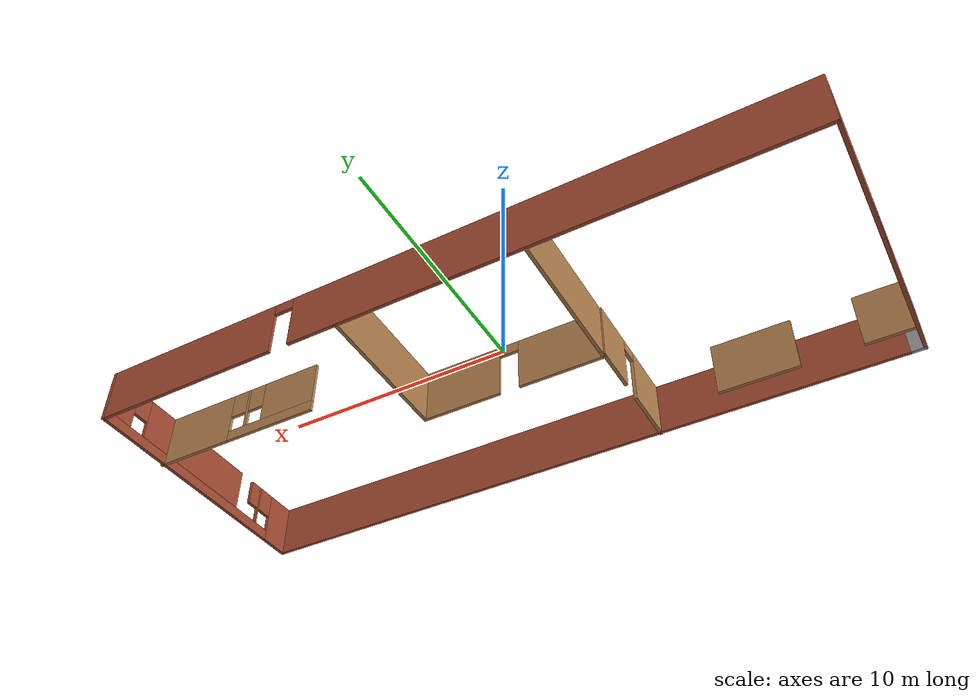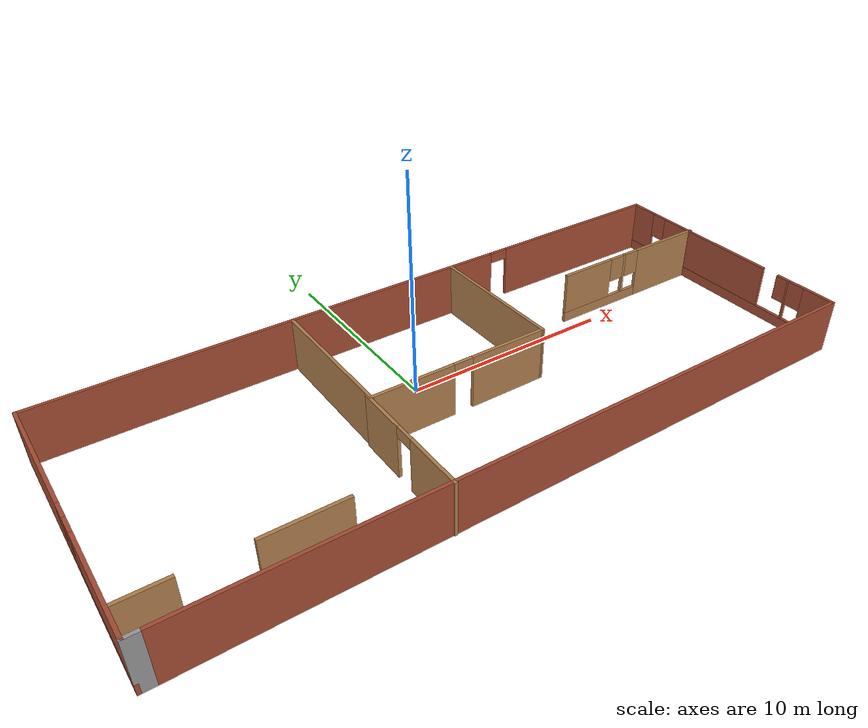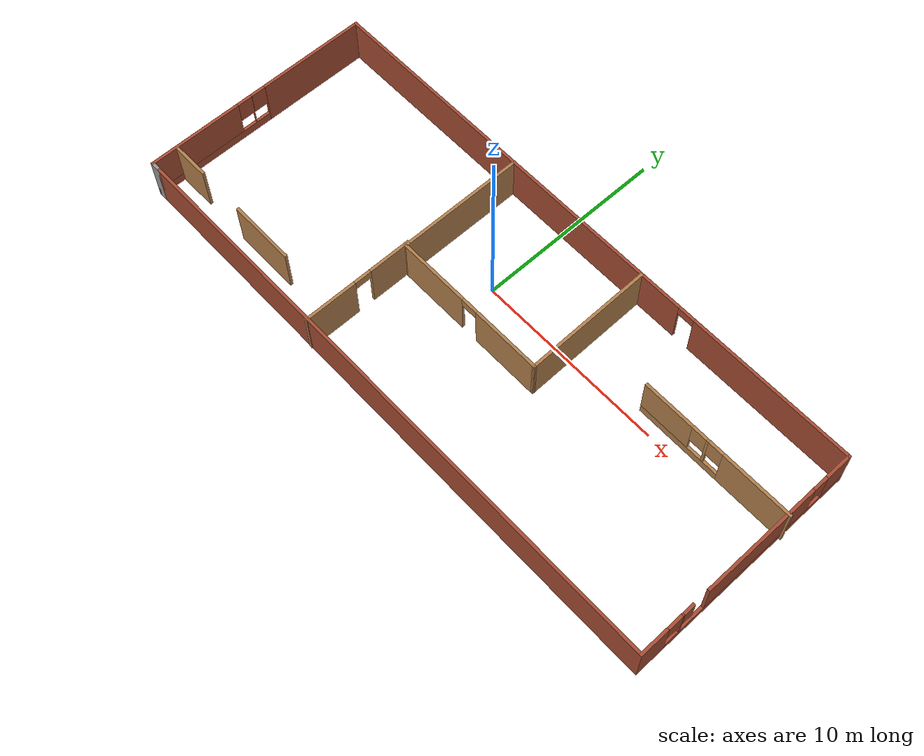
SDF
<?xml version='1.0'?>
<sdf version='1.6'>
  <model name='apartment'>
    <pose frame=''>1.18499 -1.72683 0 0 -0 0</pose>
    <link name='Wall_18'>
      <collision name='Wall_18_Collision'>
        <geometry>
          <box>
            <size>31.25 0.15 2.5</size>
          </box>
        </geometry>
        <pose frame=''>0 0 1.25 0 -0 0</pose>
      </collision>
      <visual name='Wall_18_Visual'>
        <pose frame=''>0 0 1.25 0 -0 0</pose>
        <geometry>
          <box>
            <size>31.25 0.15 2.5</size>
          </box>
        </geometry>
        <material>
          <script>
            <uri>file://media/materials/scripts/gazebo.material</uri>
            <name>Gazebo/Bricks</name>
          </script>
          <ambient>1 1 1 1</ambient>
        </material>
        <meta>
          <layer>0</layer>
        </meta>
      </visual>
      <pose frame=''>0.204376 -6.15477 0 0 -0 0</pose>
    </link>
    <link name='Wall_19'>
      <pose frame=''>15.7544 0.020228 0 0 -0 1.5708</pose>
      <visual name='Wall_19_Visual_0'>
        <pose frame=''>-5.46179 0 1.25 0 -0 0</pose>
        <geometry>
          <box>
            <size>1.57641 0.15 2.5</size>
          </box>
        </geometry>
        <material>
          <script>
            <uri>file://media/materials/scripts/gazebo.material</uri>
            <name>Gazebo/Bricks</name>
          </script>
          <ambient>1 1 1 1</ambient>
        </material>
        <meta>
          <layer>0</layer>
        </meta>
      </visual>
      <collision name='Wall_19_Collision_0'>
        <geometry>
          <box>
            <size>1.57641 0.15 2.5</size>
          </box>
        </geometry>
        <pose frame=''>-5.46179 0 1.25 0 -0 0</pose>
      </collision>
      <visual name='Wall_19_Visual_1'>
        <pose frame=''>0.788206 0 0.25 0 -0 0</pose>
        <geometry>
          <box>
            <size>10.9236 0.15 0.5</size>
          </box>
        </geometry>
        <material>
          <script>
            <uri>file://media/materials/scripts/gazebo.material</uri>
            <name>Gazebo/Bricks</name>
          </script>
          <ambient>1 1 1 1</ambient>
        </material>
        <meta>
          <layer>0</layer>
        </meta>
      </visual>
      <collision name='Wall_19_Collision_1'>
        <geometry>
          <box>
            <size>10.9236 0.15 0.5</size>
          </box>
        </geometry>
        <pose frame=''>0.788206 0 0.25 0 -0 0</pose>
      </collision>
      <visual name='Wall_19_Visual_2'>
        <pose frame=''>-3.82858 0 1.5 0 -0 0</pose>
        <geometry>
          <box>
            <size>0.090023 0.15 2</size>
          </box>
        </geometry>
        <material>
          <script>
            <uri>file://media/materials/scripts/gazebo.material</uri>
            <name>Gazebo/Bricks</name>
          </script>
          <ambient>1 1 1 1</ambient>
        </material>
        <meta>
          <layer>0</layer>
        </meta>
      </visual>
      <collision name='Wall_19_Collision_2'>
        <geometry>
          <box>
            <size>0.090023 0.15 2</size>
          </box>
        </geometry>
        <pose frame=''>-3.82858 0 1.5 0 -0 0</pose>
      </collision>
      <visual name='Wall_19_Visual_3'>
        <pose frame=''>0.803587 0 1.5 0 -0 0</pose>
        <geometry>
          <box>
            <size>6.36064 0.15 2</size>
          </box>
        </geometry>
        <material>
          <script>
            <uri>file://media/materials/scripts/gazebo.material</uri>
            <name>Gazebo/Bricks</name>
          </script>
          <ambient>1 1 1 1</ambient>
        </material>
        <meta>
          <layer>0</layer>
        </meta>
      </visual>
      <collision name='Wall_19_Collision_3'>
        <geometry>
          <box>
            <size>6.36064 0.15 2</size>
          </box>
        </geometry>
        <pose frame=''>0.803587 0 1.5 0 -0 0</pose>
      </collision>
      <visual name='Wall_19_Visual_4'>
        <pose frame=''>5.51695 0 1.5 0 -0 0</pose>
        <geometry>
          <box>
            <size>1.46609 0.15 2</size>
          </box>
        </geometry>
        <material>
          <script>
            <uri>file://media/materials/scripts/gazebo.material</uri>
            <name>Gazebo/Bricks</name>
          </script>
          <ambient>1 1 1 1</ambient>
        </material>
        <meta>
          <layer>0</layer>
        </meta>
      </visual>
      <collision name='Wall_19_Collision_4'>
        <geometry>
          <box>
            <size>1.46609 0.15 2</size>
          </box>
        </geometry>
        <pose frame=''>5.51695 0 1.5 0 -0 0</pose>
      </collision>
      <visual name='Wall_19_Visual_5'>
        <pose frame=''>-4.27359 0 1.9 0 -0 0</pose>
        <geometry>
          <box>
            <size>0.8 0.15 1.2</size>
          </box>
        </geometry>
        <material>
          <script>
            <uri>file://media/materials/scripts/gazebo.material</uri>
            <name>Gazebo/Bricks</name>
          </script>
          <ambient>1 1 1 1</ambient>
        </material>
        <meta>
          <layer>0</layer>
        </meta>
      </visual>
      <collision name='Wall_19_Collision_5'>
        <geometry>
          <box>
            <size>0.8 0.15 1.2</size>
          </box>
        </geometry>
        <pose frame=''>-4.27359 0 1.9 0 -0 0</pose>
      </collision>
      <visual name='Wall_19_Visual_6'>
        <pose frame=''>-3.48015 0 1.9 0 -0 0</pose>
        <geometry>
          <box>
            <size>0.606833 0.15 1.2</size>
          </box>
        </geometry>
        <material>
          <script>
            <uri>file://media/materials/scripts/gazebo.material</uri>
            <name>Gazebo/Bricks</name>
          </script>
          <ambient>1 1 1 1</ambient>
        </material>
        <meta>
          <layer>0</layer>
        </meta>
      </visual>
      <collision name='Wall_19_Collision_6'>
        <geometry>
          <box>
            <size>0.606833 0.15 1.2</size>
          </box>
        </geometry>
        <pose frame=''>-3.48015 0 1.9 0 -0 0</pose>
      </collision>
      <visual name='Wall_19_Visual_7'>
        <pose frame=''>4.38391 0 1.9 0 -0 0</pose>
        <geometry>
          <box>
            <size>0.8 0.15 1.2</size>
          </box>
        </geometry>
        <material>
          <script>
            <uri>file://media/materials/scripts/gazebo.material</uri>
            <name>Gazebo/Bricks</name>
          </script>
          <ambient>1 1 1 1</ambient>
        </material>
        <meta>
          <layer>0</layer>
        </meta>
      </visual>
      <collision name='Wall_19_Collision_7'>
        <geometry>
          <box>
            <size>0.8 0.15 1.2</size>
          </box>
        </geometry>
        <pose frame=''>4.38391 0 1.9 0 -0 0</pose>
      </collision>
    </link>
    <link name='Wall_20'>
      <pose frame=''>-0.045624 6.19523 0 0 -0 3.14159</pose>
      <visual name='Wall_20_Visual_0'>
        <pose frame=''>-11.4355 0 1.25 0 -0 0</pose>
        <geometry>
          <box>
            <size>8.87899 0.15 2.5</size>
          </box>
        </geometry>
        <material>
          <script>
            <uri>file://media/materials/scripts/gazebo.material</uri>
            <name>Gazebo/Bricks</name>
          </script>
          <ambient>1 1 1 1</ambient>
        </material>
        <meta>
          <layer>0</layer>
        </meta>
      </visual>
      <collision name='Wall_20_Collision_0'>
        <geometry>
          <box>
            <size>8.87899 0.15 2.5</size>
          </box>
        </geometry>
        <pose frame=''>-11.4355 0 1.25 0 -0 0</pose>
      </collision>
      <visual name='Wall_20_Visual_1'>
        <pose frame=''>4.88949 0 1.25 0 -0 0</pose>
        <geometry>
          <box>
            <size>21.971 0.15 2.5</size>
          </box>
        </geometry>
        <material>
          <script>
            <uri>file://media/materials/scripts/gazebo.material</uri>
            <name>Gazebo/Bricks</name>
          </script>
          <ambient>1 1 1 1</ambient>
        </material>
        <meta>
          <layer>0</layer>
        </meta>
      </visual>
      <collision name='Wall_20_Collision_1'>
        <geometry>
          <box>
            <size>21.971 0.15 2.5</size>
          </box>
        </geometry>
        <pose frame=''>4.88949 0 1.25 0 -0 0</pose>
      </collision>
      <visual name='Wall_20_Visual_2'>
        <pose frame=''>-6.54601 0 2.25 0 -0 0</pose>
        <geometry>
          <box>
            <size>0.9 0.15 0.5</size>
          </box>
        </geometry>
        <material>
          <script>
            <uri>file://media/materials/scripts/gazebo.material</uri>
            <name>Gazebo/Bricks</name>
          </script>
          <ambient>1 1 1 1</ambient>
        </material>
        <meta>
          <layer>0</layer>
        </meta>
      </visual>
      <collision name='Wall_20_Collision_2'>
        <geometry>
          <box>
            <size>0.9 0.15 0.5</size>
          </box>
        </geometry>
        <pose frame=''>-6.54601 0 2.25 0 -0 0</pose>
      </collision>
    </link>
    <link name='Wall_21'>
      <pose frame=''>-15.8456 0.020228 0 0 0 -1.5708</pose>
      <visual name='Wall_21_Visual_0'>
        <pose frame=''>-3.33235 0 1.25 0 -0 0</pose>
        <geometry>
          <box>
            <size>5.8353 0.15 2.5</size>
          </box>
        </geometry>
        <material>
          <script>
            <uri>file://media/materials/scripts/gazebo.material</uri>
            <name>Gazebo/Bricks</name>
          </script>
          <ambient>1 1 1 1</ambient>
        </material>
        <meta>
          <layer>0</layer>
        </meta>
      </visual>
      <collision name='Wall_21_Collision_0'>
        <geometry>
          <box>
            <size>5.8353 0.15 2.5</size>
          </box>
        </geometry>
        <pose frame=''>-3.33235 0 1.25 0 -0 0</pose>
      </collision>
      <visual name='Wall_21_Visual_1'>
        <pose frame=''>2.91765 0 0.25 0 -0 0</pose>
        <geometry>
          <box>
            <size>6.6647 0.15 0.5</size>
          </box>
        </geometry>
        <material>
          <script>
            <uri>file://media/materials/scripts/gazebo.material</uri>
            <name>Gazebo/Bricks</name>
          </script>
          <ambient>1 1 1 1</ambient>
        </material>
        <meta>
          <layer>0</layer>
        </meta>
      </visual>
      <collision name='Wall_21_Collision_1'>
        <geometry>
          <box>
            <size>6.6647 0.15 0.5</size>
          </box>
        </geometry>
        <pose frame=''>2.91765 0 0.25 0 -0 0</pose>
      </collision>
      <visual name='Wall_21_Visual_2'>
        <pose frame=''>0.389852 0 1.5 0 -0 0</pose>
        <geometry>
          <box>
            <size>0.009111 0.15 2</size>
          </box>
        </geometry>
        <material>
          <script>
            <uri>file://media/materials/scripts/gazebo.material</uri>
            <name>Gazebo/Bricks</name>
          </script>
          <ambient>1 1 1 1</ambient>
        </material>
        <meta>
          <layer>0</layer>
        </meta>
      </visual>
      <collision name='Wall_21_Collision_2'>
        <geometry>
          <box>
            <size>0.009111 0.15 2</size>
          </box>
        </geometry>
        <pose frame=''>0.389852 0 1.5 0 -0 0</pose>
      </collision>
      <visual name='Wall_21_Visual_3'>
        <pose frame=''>3.7222 0 1.5 0 -0 0</pose>
        <geometry>
          <box>
            <size>5.05559 0.15 2</size>
          </box>
        </geometry>
        <material>
          <script>
            <uri>file://media/materials/scripts/gazebo.material</uri>
            <name>Gazebo/Bricks</name>
          </script>
          <ambient>1 1 1 1</ambient>
        </material>
        <meta>
          <layer>0</layer>
        </meta>
      </visual>
      <collision name='Wall_21_Collision_3'>
        <geometry>
          <box>
            <size>5.05559 0.15 2</size>
          </box>
        </geometry>
        <pose frame=''>3.7222 0 1.5 0 -0 0</pose>
      </collision>
      <visual name='Wall_21_Visual_4'>
        <pose frame=''>-0.014703 0 1.9 0 -0 0</pose>
        <geometry>
          <box>
            <size>0.8 0.15 1.2</size>
          </box>
        </geometry>
        <material>
          <script>
            <uri>file://media/materials/scripts/gazebo.material</uri>
            <name>Gazebo/Bricks</name>
          </script>
          <ambient>1 1 1 1</ambient>
        </material>
        <meta>
          <layer>0</layer>
        </meta>
      </visual>
      <collision name='Wall_21_Collision_4'>
        <geometry>
          <box>
            <size>0.8 0.15 1.2</size>
          </box>
        </geometry>
        <pose frame=''>-0.014703 0 1.9 0 -0 0</pose>
      </collision>
      <visual name='Wall_21_Visual_5'>
        <pose frame=''>0.794408 0 1.9 0 -0 0</pose>
        <geometry>
          <box>
            <size>0.8 0.15 1.2</size>
          </box>
        </geometry>
        <material>
          <script>
            <uri>file://media/materials/scripts/gazebo.material</uri>
            <name>Gazebo/Bricks</name>
          </script>
          <ambient>1 1 1 1</ambient>
        </material>
        <meta>
          <layer>0</layer>
        </meta>
      </visual>
      <collision name='Wall_21_Collision_5'>
        <geometry>
          <box>
            <size>0.8 0.15 1.2</size>
          </box>
        </geometry>
        <pose frame=''>0.794408 0 1.9 0 -0 0</pose>
      </collision>
    </link>
    <link name='Wall_22'>
      <collision name='Wall_22_Collision'>
        <geometry>
          <box>
            <size>0.65 0.15 2.5</size>
          </box>
        </geometry>
        <pose frame=''>0 0 1.25 0 -0 0</pose>
      </collision>
      <visual name='Wall_22_Visual'>
        <pose frame=''>0 0 1.25 0 -0 0</pose>
        <geometry>
          <box>
            <size>0.65 0.15 2.5</size>
          </box>
        </geometry>
        <material>
          <script>
            <uri>file://media/materials/scripts/gazebo.material</uri>
            <name>Gazebo/Grey</name>
          </script>
          <ambient>1 1 1 1</ambient>
        </material>
        <meta>
          <layer>0</layer>
        </meta>
      </visual>
      <pose frame=''>-15.5956 -6.15477 0 0 -0 0</pose>
    </link>
    <link name='Wall_24'>
      <collision name='Wall_24_Collision'>
        <geometry>
          <box>
            <size>6.8314 0.15 2.5</size>
          </box>
        </geometry>
        <pose frame=''>0 0 1.25 0 -0 0</pose>
      </collision>
      <visual name='Wall_24_Visual'>
        <pose frame=''>0 0 1.25 0 -0 0</pose>
        <geometry>
          <box>
            <size>6.8314 0.15 2.5</size>
          </box>
        </geometry>
        <material>
          <script>
            <uri>file://media/materials/scripts/gazebo.material</uri>
            <name>Gazebo/Wood</name>
          </script>
          <ambient>0.996078 0.47451 0.0196078 1</ambient>
        </material>
        <meta>
          <layer>0</layer>
        </meta>
      </visual>
      <pose frame=''>3.78986 2.84372 0 0 0 -1.55869</pose>
    </link>
    <link name='Wall_27'>
      <pose frame=''>-0.344681 -0.496732 0 0 -0 3.14159</pose>
      <visual name='Wall_27_Visual_0'>
        <pose frame=''>-2.39449 0 1.25 0 -0 0</pose>
        <geometry>
          <box>
            <size>3.71101 0.15 2.5</size>
          </box>
        </geometry>
        <material>
          <script>
            <uri>file://media/materials/scripts/gazebo.material</uri>
            <name>Gazebo/Wood</name>
          </script>
          <ambient>0.996078 0.47451 0.0196078 1</ambient>
        </material>
        <meta>
          <layer>0</layer>
        </meta>
      </visual>
      <collision name='Wall_27_Collision_0'>
        <geometry>
          <box>
            <size>3.71101 0.15 2.5</size>
          </box>
        </geometry>
        <pose frame=''>-2.39449 0 1.25 0 -0 0</pose>
      </collision>
      <visual name='Wall_27_Visual_1'>
        <pose frame=''>2.30551 0 1.25 0 -0 0</pose>
        <geometry>
          <box>
            <size>3.88899 0.15 2.5</size>
          </box>
        </geometry>
        <material>
          <script>
            <uri>file://media/materials/scripts/gazebo.material</uri>
            <name>Gazebo/Wood</name>
          </script>
          <ambient>0.996078 0.47451 0.0196078 1</ambient>
        </material>
        <meta>
          <layer>0</layer>
        </meta>
      </visual>
      <collision name='Wall_27_Collision_1'>
        <geometry>
          <box>
            <size>3.88899 0.15 2.5</size>
          </box>
        </geometry>
        <pose frame=''>2.30551 0 1.25 0 -0 0</pose>
      </collision>
      <visual name='Wall_27_Visual_2'>
        <pose frame=''>-0.088987 0 2.25 0 -0 0</pose>
        <geometry>
          <box>
            <size>0.9 0.15 0.5</size>
          </box>
        </geometry>
        <material>
          <script>
            <uri>file://media/materials/scripts/gazebo.material</uri>
            <name>Gazebo/Wood</name>
          </script>
          <ambient>0.996078 0.47451 0.0196078 1</ambient>
        </material>
        <meta>
          <layer>0</layer>
        </meta>
      </visual>
      <collision name='Wall_27_Collision_2'>
        <geometry>
          <box>
            <size>0.9 0.15 0.5</size>
          </box>
        </geometry>
        <pose frame=''>-0.088987 0 2.25 0 -0 0</pose>
      </collision>
    </link>
    <link name='Wall_28'>
      <collision name='Wall_28_Collision'>
        <geometry>
          <box>
            <size>6.75 0.15 2.5</size>
          </box>
        </geometry>
        <pose frame=''>0 0 1.25 0 -0 0</pose>
      </collision>
      <visual name='Wall_28_Visual'>
        <pose frame=''>0 0 1.25 0 -0 0</pose>
        <geometry>
          <box>
            <size>6.75 0.15 2.5</size>
          </box>
        </geometry>
        <material>
          <script>
            <uri>file://media/materials/scripts/gazebo.material</uri>
            <name>Gazebo/Wood</name>
          </script>
          <ambient>0.996078 0.47451 0.0196078 1</ambient>
        </material>
        <meta>
          <layer>0</layer>
        </meta>
      </visual>
      <pose frame=''>-4.51968 2.80327 0 0 -0 1.5708</pose>
    </link>
    <link name='Wall_35'>
      <pose frame=''>11.7956 2.42181 0 0 -0 3.14159</pose>
      <visual name='Wall_35_Visual_0'>
        <pose frame=''>-2.24449 0 1.25 0 -0 0</pose>
        <geometry>
          <box>
            <size>3.76101 0.15 2.5</size>
          </box>
        </geometry>
        <material>
          <script>
            <uri>file://media/materials/scripts/gazebo.material</uri>
            <name>Gazebo/Wood</name>
          </script>
          <ambient>0.996078 0.47451 0.0196078 1</ambient>
        </material>
        <meta>
          <layer>0</layer>
        </meta>
      </visual>
      <collision name='Wall_35_Collision_0'>
        <geometry>
          <box>
            <size>3.76101 0.15 2.5</size>
          </box>
        </geometry>
        <pose frame=''>-2.24449 0 1.25 0 -0 0</pose>
      </collision>
      <visual name='Wall_35_Visual_1'>
        <pose frame=''>1.88051 0 0.25 0 -0 0</pose>
        <geometry>
          <box>
            <size>4.48899 0.15 0.5</size>
          </box>
        </geometry>
        <material>
          <script>
            <uri>file://media/materials/scripts/gazebo.material</uri>
            <name>Gazebo/Wood</name>
          </script>
          <ambient>0.996078 0.47451 0.0196078 1</ambient>
        </material>
        <meta>
          <layer>0</layer>
        </meta>
      </visual>
      <collision name='Wall_35_Collision_1'>
        <geometry>
          <box>
            <size>4.48899 0.15 0.5</size>
          </box>
        </geometry>
        <pose frame=''>1.88051 0 0.25 0 -0 0</pose>
      </collision>
      <visual name='Wall_35_Visual_2'>
        <pose frame=''>0.501253 0 1.5 0 -0 0</pose>
        <geometry>
          <box>
            <size>0.130478 0.15 2</size>
          </box>
        </geometry>
        <material>
          <script>
            <uri>file://media/materials/scripts/gazebo.material</uri>
            <name>Gazebo/Wood</name>
          </script>
          <ambient>0.996078 0.47451 0.0196078 1</ambient>
        </material>
        <meta>
          <layer>0</layer>
        </meta>
      </visual>
      <collision name='Wall_35_Collision_2'>
        <geometry>
          <box>
            <size>0.130478 0.15 2</size>
          </box>
        </geometry>
        <pose frame=''>0.501253 0 1.5 0 -0 0</pose>
      </collision>
      <visual name='Wall_35_Visual_3'>
        <pose frame=''>2.74575 0 1.5 0 -0 0</pose>
        <geometry>
          <box>
            <size>2.75851 0.15 2</size>
          </box>
        </geometry>
        <material>
          <script>
            <uri>file://media/materials/scripts/gazebo.material</uri>
            <name>Gazebo/Wood</name>
          </script>
          <ambient>0.996078 0.47451 0.0196078 1</ambient>
        </material>
        <meta>
          <layer>0</layer>
        </meta>
      </visual>
      <collision name='Wall_35_Collision_3'>
        <geometry>
          <box>
            <size>2.75851 0.15 2</size>
          </box>
        </geometry>
        <pose frame=''>2.74575 0 1.5 0 -0 0</pose>
      </collision>
      <visual name='Wall_35_Visual_4'>
        <pose frame=''>0.036014 0 1.9 0 -0 0</pose>
        <geometry>
          <box>
            <size>0.8 0.15 1.2</size>
          </box>
        </geometry>
        <material>
          <script>
            <uri>file://media/materials/scripts/gazebo.material</uri>
            <name>Gazebo/Wood</name>
          </script>
          <ambient>0.996078 0.47451 0.0196078 1</ambient>
        </material>
        <meta>
          <layer>0</layer>
        </meta>
      </visual>
      <collision name='Wall_35_Collision_4'>
        <geometry>
          <box>
            <size>0.8 0.15 1.2</size>
          </box>
        </geometry>
        <pose frame=''>0.036014 0 1.9 0 -0 0</pose>
      </collision>
      <visual name='Wall_35_Visual_5'>
        <pose frame=''>0.966492 0 1.9 0 -0 0</pose>
        <geometry>
          <box>
            <size>0.8 0.15 1.2</size>
          </box>
        </geometry>
        <material>
          <script>
            <uri>file://media/materials/scripts/gazebo.material</uri>
            <name>Gazebo/Wood</name>
          </script>
          <ambient>0.996078 0.47451 0.0196078 1</ambient>
        </material>
        <meta>
          <layer>0</layer>
        </meta>
      </visual>
      <collision name='Wall_35_Collision_5'>
        <geometry>
          <box>
            <size>0.8 0.15 1.2</size>
          </box>
        </geometry>
        <pose frame=''>0.966492 0 1.9 0 -0 0</pose>
      </collision>
    </link>
    <link name='Wall_38'>
      <collision name='Wall_38_Collision'>
        <geometry>
          <box>
            <size>2 0.15 2.5</size>
          </box>
        </geometry>
        <pose frame=''>0 0 1.25 0 -0 0</pose>
      </collision>
      <visual name='Wall_38_Visual'>
        <pose frame=''>0 0 1.25 0 -0 0</pose>
        <geometry>
          <box>
            <size>2 0.15 2.5</size>
          </box>
        </geometry>
        <material>
          <script>
            <uri>file://media/materials/scripts/gazebo.material</uri>
            <name>Gazebo/Wood</name>
          </script>
          <ambient>0.996078 0.47451 0.0196078 1</ambient>
        </material>
        <meta>
          <layer>0</layer>
        </meta>
      </visual>
      <pose frame=''>-14.7847 -4.77928 0 0 -0 0</pose>
    </link>
    <link name='Wall_40'>
      <collision name='Wall_40_Collision'>
        <geometry>
          <box>
            <size>3.5 0.15 2.5</size>
          </box>
        </geometry>
        <pose frame=''>0 0 1.25 0 -0 0</pose>
      </collision>
      <visual name='Wall_40_Visual'>
        <pose frame=''>0 0 1.25 0 -0 0</pose>
        <geometry>
          <box>
            <size>3.5 0.15 2.5</size>
          </box>
        </geometry>
        <material>
          <script>
            <uri>file://media/materials/scripts/gazebo.material</uri>
            <name>Gazebo/Wood</name>
          </script>
          <ambient>0.996078 0.47451 0.0196078 1</ambient>
        </material>
        <meta>
          <layer>0</layer>
        </meta>
      </visual>
      <pose frame=''>-9.46324 -4.81974 0 0 -0 0</pose>
    </link>
    <link name='Wall_42'>
      <pose frame=''>-4.58444 -3.27023 0 0 -0 1.5708</pose>
      <visual name='Wall_42_Visual_0'>
        <pose frame=''>-1.5895 0 1.25 0 -0 0</pose>
        <geometry>
          <box>
            <size>2.82099 0.15 2.5</size>
          </box>
        </geometry>
        <material>
          <script>
            <uri>file://media/materials/scripts/gazebo.material</uri>
            <name>Gazebo/Wood</name>
          </script>
          <ambient>0.996078 0.47451 0.0196078 1</ambient>
        </material>
        <meta>
          <layer>0</layer>
        </meta>
      </visual>
      <collision name='Wall_42_Collision_0'>
        <geometry>
          <box>
            <size>2.82099 0.15 2.5</size>
          </box>
        </geometry>
        <pose frame=''>-1.5895 0 1.25 0 -0 0</pose>
      </collision>
      <visual name='Wall_42_Visual_1'>
        <pose frame=''>1.8605 0 1.25 0 -0 0</pose>
        <geometry>
          <box>
            <size>2.27901 0.15 2.5</size>
          </box>
        </geometry>
        <material>
          <script>
            <uri>file://media/materials/scripts/gazebo.material</uri>
            <name>Gazebo/Wood</name>
          </script>
          <ambient>0.996078 0.47451 0.0196078 1</ambient>
        </material>
        <meta>
          <layer>0</layer>
        </meta>
      </visual>
      <collision name='Wall_42_Collision_1'>
        <geometry>
          <box>
            <size>2.27901 0.15 2.5</size>
          </box>
        </geometry>
        <pose frame=''>1.8605 0 1.25 0 -0 0</pose>
      </collision>
      <visual name='Wall_42_Visual_2'>
        <pose frame=''>0.27099 0 2.25 0 -0 0</pose>
        <geometry>
          <box>
            <size>0.9 0.15 0.5</size>
          </box>
        </geometry>
        <material>
          <script>
            <uri>file://media/materials/scripts/gazebo.material</uri>
            <name>Gazebo/Wood</name>
          </script>
          <ambient>0.996078 0.47451 0.0196078 1</ambient>
        </material>
        <meta>
          <layer>0</layer>
        </meta>
      </visual>
      <collision name='Wall_42_Collision_2'>
        <geometry>
          <box>
            <size>0.9 0.15 0.5</size>
          </box>
        </geometry>
        <pose frame=''>0.27099 0 2.25 0 -0 0</pose>
      </collision>
    </link>
    <static>1</static>
  </model>
</sdf>
